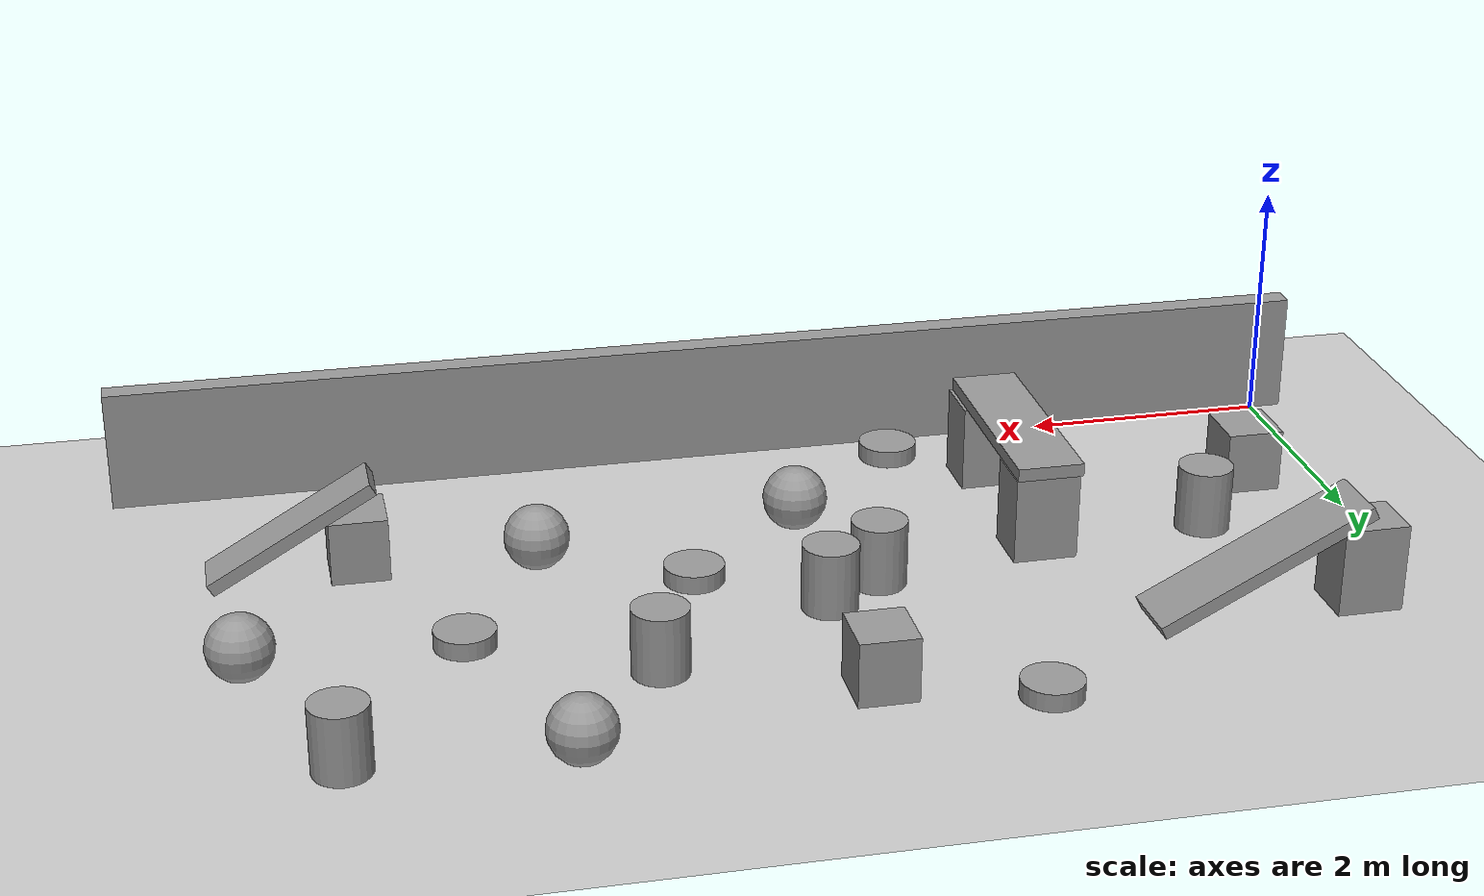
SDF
<sdf version="1.6">
 <world name="default">
  <model name="ground_plane">
   <static>1</static>
   <link name="link">
    <collision name="collision">
     <geometry><plane><normal>0 0 1</normal><size>100 100</size></plane></geometry>
     <surface><friction><ode><mu>100</mu><mu2>50</mu2></ode></friction></surface>
    </collision>
    <visual name="visual">
     <cast_shadows>0</cast_shadows>
     <geometry><plane><normal>0 0 1</normal><size>100 100</size></plane></geometry>
     <material>
      <script><uri>file://media/materials/scripts/gazebo.material</uri><name>Gazebo/Grey</name></script>
     </material>
    </visual>
   </link>
  </model>
  <model name="object1">
   <link name="link">
    <inertial>
     <mass>1</mass>
     <inertia>
      <ixx>0.166667</ixx>
      <ixy>0</ixy>
      <ixz>0</ixz>
      <iyy>0.166667</iyy>
      <iyz>0</iyz>
      <izz>0.166667</izz>
     </inertia>
    </inertial>
    <visual name="visual">
     <geometry><box><size>0.462419 0.484025 0.518106</size></box></geometry>
     <material>
      <script><name>Gazebo/Grey</name><uri>file://media/materials/scripts/gazebo.material</uri></script>
      <ambient>0.3 0.3 0.3 1</ambient>
      <diffuse>0.7 0.7 0.7 1</diffuse>
      <specular>0.01 0.01 0.01 1</specular>
      <emissive>0 0 0 1</emissive>
     </material>
    </visual>
    <collision name="collision">
     <geometry><box><size>0.462419 0.484025 0.518106</size></box></geometry>
     <surface>
      <friction>
       <ode><mu>1</mu><mu2>1</mu2><fdir1>0 0 0</fdir1><slip1>0</slip1><slip2>0</slip2></ode>
       <torsional>
        <coefficient>1</coefficient>
        <patch_radius>0</patch_radius>
        <surface_radius>0</surface_radius>
        <use_patch_radius>1</use_patch_radius>
        <ode><slip>0</slip></ode>
       </torsional>
      </friction>
      <bounce><restitution_coefficient>0</restitution_coefficient><threshold>1e+06</threshold></bounce>
      <contact>
       <collide_without_contact>0</collide_without_contact>
       <collide_without_contact_bitmask>1</collide_without_contact_bitmask>
       <collide_bitmask>1</collide_bitmask>
       <ode>
        <soft_cfm>0</soft_cfm>
        <soft_erp>0.2</soft_erp>
        <kp>1e+13</kp>
        <kd>1</kd>
        <max_vel>0.01</max_vel>
        <min_depth>0</min_depth>
       </ode>
       <bullet>
        <split_impulse>1</split_impulse>
        <split_impulse_penetration_threshold>-0.01</split_impulse_penetration_threshold>
        <soft_cfm>0</soft_cfm>
        <soft_erp>0.2</soft_erp>
        <kp>1e+13</kp>
        <kd>1</kd>
       </bullet>
      </contact>
     </surface>
    </collision>
   </link>
   <static>1</static>
   <pose>0.624317 1.3526 0.259053 0 -0 0</pose>
  </model>
  <model name="object1_clone_0">
   <link name="link">
    <inertial>
     <mass>1</mass>
     <inertia>
      <ixx>0.166667</ixx>
      <ixy>0</ixy>
      <ixz>0</ixz>
      <iyy>0.166667</iyy>
      <iyz>0</iyz>
      <izz>0.166667</izz>
     </inertia>
    </inertial>
    <visual name="visual">
     <geometry><box><size>0.462419 0.484025 0.518106</size></box></geometry>
     <material>
      <script><name>Gazebo/Grey</name><uri>file://media/materials/scripts/gazebo.material</uri></script>
      <ambient>0.3 0.3 0.3 1</ambient>
      <diffuse>0.7 0.7 0.7 1</diffuse>
      <specular>0.01 0.01 0.01 1</specular>
      <emissive>0 0 0 1</emissive>
     </material>
    </visual>
    <collision name="collision">
     <geometry><box><size>0.462419 0.484025 0.518106</size></box></geometry>
     <surface>
      <friction>
       <ode><mu>1</mu><mu2>1</mu2><fdir1>0 0 0</fdir1><slip1>0</slip1><slip2>0</slip2></ode>
       <torsional>
        <coefficient>1</coefficient>
        <patch_radius>0</patch_radius>
        <surface_radius>0</surface_radius>
        <use_patch_radius>1</use_patch_radius>
        <ode><slip>0</slip></ode>
       </torsional>
      </friction>
      <bounce><restitution_coefficient>0</restitution_coefficient><threshold>1e+06</threshold></bounce>
      <contact>
       <collide_without_contact>0</collide_without_contact>
       <collide_without_contact_bitmask>1</collide_without_contact_bitmask>
       <collide_bitmask>1</collide_bitmask>
       <ode>
        <soft_cfm>0</soft_cfm>
        <soft_erp>0.2</soft_erp>
        <kp>1e+13</kp>
        <kd>1</kd>
        <max_vel>0.01</max_vel>
        <min_depth>0</min_depth>
       </ode>
       <bullet>
        <split_impulse>1</split_impulse>
        <split_impulse_penetration_threshold>-0.01</split_impulse_penetration_threshold>
        <soft_cfm>0</soft_cfm>
        <soft_erp>0.2</soft_erp>
        <kp>1e+13</kp>
        <kd>1</kd>
       </bullet>
      </contact>
     </surface>
    </collision>
   </link>
   <static>1</static>
   <pose>4.48758 4.11823 0.259053 0 -0 0</pose>
  </model>
  <model name="object2">
   <link name="link">
    <inertial>
     <mass>1</mass>
     <inertia>
      <ixx>0.166667</ixx>
      <ixy>0</ixy>
      <ixz>0</ixz>
      <iyy>0.166667</iyy>
      <iyz>0</iyz>
      <izz>0.166667</izz>
     </inertia>
    </inertial>
    <visual name="visual">
     <geometry><box><size>0.518422 0.450005 0.707103</size></box></geometry>
     <material>
      <script><name>Gazebo/Grey</name><uri>file://media/materials/scripts/gazebo.material</uri></script>
      <ambient>0.3 0.3 0.3 1</ambient>
      <diffuse>0.7 0.7 0.7 1</diffuse>
      <specular>0.01 0.01 0.01 1</specular>
      <emissive>0 0 0 1</emissive>
     </material>
    </visual>
    <collision name="collision">
     <geometry><box><size>0.518422 0.450005 0.707103</size></box></geometry>
     <surface>
      <friction>
       <ode><mu>1</mu><mu2>1</mu2><fdir1>0 0 0</fdir1><slip1>0</slip1><slip2>0</slip2></ode>
       <torsional>
        <coefficient>1</coefficient>
        <patch_radius>0</patch_radius>
        <surface_radius>0</surface_radius>
        <use_patch_radius>1</use_patch_radius>
        <ode><slip>0</slip></ode>
       </torsional>
      </friction>
      <bounce><restitution_coefficient>0</restitution_coefficient><threshold>1e+06</threshold></bounce>
      <contact>
       <collide_without_contact>0</collide_without_contact>
       <collide_without_contact_bitmask>1</collide_without_contact_bitmask>
       <collide_bitmask>1</collide_bitmask>
       <ode>
        <soft_cfm>0</soft_cfm>
        <soft_erp>0.2</soft_erp>
        <kp>1e+13</kp>
        <kd>1</kd>
        <max_vel>0.01</max_vel>
        <min_depth>0</min_depth>
       </ode>
       <bullet>
        <split_impulse>1</split_impulse>
        <split_impulse_penetration_threshold>-0.01</split_impulse_penetration_threshold>
        <soft_cfm>0</soft_cfm>
        <soft_erp>0.2</soft_erp>
        <kp>1e+13</kp>
        <kd>1</kd>
       </bullet>
      </contact>
     </surface>
    </collision>
   </link>
   <static>1</static>
   <pose>0.547148 3.55385 0.353552 0 -0 0.0094</pose>
  </model>
  <model name="object3">
   <link name="link">
    <inertial>
     <mass>1</mass>
     <inertia>
      <ixx>0.166667</ixx>
      <ixy>0</ixy>
      <ixz>0</ixz>
      <iyy>0.166667</iyy>
      <iyz>0</iyz>
      <izz>0.166667</izz>
     </inertia>
    </inertial>
    <visual name="visual">
     <geometry><box><size>1.83274 0.534759 0.105167</size></box></geometry>
     <material>
      <script><name>Gazebo/Grey</name><uri>file://media/materials/scripts/gazebo.material</uri></script>
      <ambient>0.3 0.3 0.3 1</ambient>
      <diffuse>0.7 0.7 0.7 1</diffuse>
      <specular>0.01 0.01 0.01 1</specular>
      <emissive>0 0 0 1</emissive>
     </material>
    </visual>
    <collision name="collision">
     <geometry><box><size>1.83274 0.534759 0.105167</size></box></geometry>
     <surface>
      <friction>
       <ode><mu>1</mu><mu2>1</mu2><fdir1>0 0 0</fdir1><slip1>0</slip1><slip2>0</slip2></ode>
       <torsional>
        <coefficient>1</coefficient>
        <patch_radius>0</patch_radius>
        <surface_radius>0</surface_radius>
        <use_patch_radius>1</use_patch_radius>
        <ode><slip>0</slip></ode>
       </torsional>
      </friction>
      <bounce><restitution_coefficient>0</restitution_coefficient><threshold>1e+06</threshold></bounce>
      <contact>
       <collide_without_contact>0</collide_without_contact>
       <collide_without_contact_bitmask>1</collide_without_contact_bitmask>
       <collide_bitmask>1</collide_bitmask>
       <ode>
        <soft_cfm>0</soft_cfm>
        <soft_erp>0.2</soft_erp>
        <kp>1e+13</kp>
        <kd>1</kd>
        <max_vel>0.01</max_vel>
        <min_depth>0</min_depth>
       </ode>
       <bullet>
        <split_impulse>1</split_impulse>
        <split_impulse_penetration_threshold>-0.01</split_impulse_penetration_threshold>
        <soft_cfm>0</soft_cfm>
        <soft_erp>0.2</soft_erp>
        <kp>1e+13</kp>
        <kd>1</kd>
       </bullet>
      </contact>
     </surface>
    </collision>
   </link>
   <static>1</static>
   <pose>1.42303 3.57507 0.458088 0.008272 0.462769 0.028019</pose>
  </model>
  <model name="object2_clone">
   <link name="link">
    <inertial>
     <mass>1</mass>
     <inertia>
      <ixx>0.166667</ixx>
      <ixy>0</ixy>
      <ixz>0</ixz>
      <iyy>0.166667</iyy>
      <iyz>0</iyz>
      <izz>0.166667</izz>
     </inertia>
    </inertial>
    <visual name="visual">
     <geometry><box><size>0.518422 0.450005 0.707103</size></box></geometry>
     <material>
      <script><name>Gazebo/Grey</name><uri>file://media/materials/scripts/gazebo.material</uri></script>
      <ambient>0.3 0.3 0.3 1</ambient>
      <diffuse>0.7 0.7 0.7 1</diffuse>
      <specular>0.01 0.01 0.01 1</specular>
      <emissive>0 0 0 1</emissive>
     </material>
    </visual>
    <collision name="collision">
     <geometry><box><size>0.518422 0.450005 0.707103</size></box></geometry>
     <surface>
      <friction>
       <ode><mu>1</mu><mu2>1</mu2><fdir1>0 0 0</fdir1><slip1>0</slip1><slip2>0</slip2></ode>
       <torsional>
        <coefficient>1</coefficient>
        <patch_radius>0</patch_radius>
        <surface_radius>0</surface_radius>
        <use_patch_radius>1</use_patch_radius>
        <ode><slip>0</slip></ode>
       </torsional>
      </friction>
      <bounce><restitution_coefficient>0</restitution_coefficient><threshold>1e+06</threshold></bounce>
      <contact>
       <collide_without_contact>0</collide_without_contact>
       <collide_without_contact_bitmask>1</collide_without_contact_bitmask>
       <collide_bitmask>1</collide_bitmask>
       <ode>
        <soft_cfm>0</soft_cfm>
        <soft_erp>0.2</soft_erp>
        <kp>1e+13</kp>
        <kd>1</kd>
        <max_vel>0.01</max_vel>
        <min_depth>0</min_depth>
       </ode>
       <bullet>
        <split_impulse>1</split_impulse>
        <split_impulse_penetration_threshold>-0.01</split_impulse_penetration_threshold>
        <soft_cfm>0</soft_cfm>
        <soft_erp>0.2</soft_erp>
        <kp>1e+13</kp>
        <kd>1</kd>
       </bullet>
      </contact>
     </surface>
    </collision>
   </link>
   <static>1</static>
   <pose>2.69917 2.20262 0.353552 0 -0 0.0094</pose>
  </model>
  <model name="object2_clone_0">
   <link name="link">
    <inertial>
     <mass>1</mass>
     <inertia>
      <ixx>0.166667</ixx>
      <ixy>0</ixy>
      <ixz>0</ixz>
      <iyy>0.166667</iyy>
      <iyz>0</iyz>
      <izz>0.166667</izz>
     </inertia>
    </inertial>
    <visual name="visual">
     <geometry><box><size>0.518422 0.450005 0.707103</size></box></geometry>
     <material>
      <script><name>Gazebo/Grey</name><uri>file://media/materials/scripts/gazebo.material</uri></script>
      <ambient>0.3 0.3 0.3 1</ambient>
      <diffuse>0.7 0.7 0.7 1</diffuse>
      <specular>0.01 0.01 0.01 1</specular>
      <emissive>0 0 0 1</emissive>
     </material>
    </visual>
    <collision name="collision">
     <geometry><box><size>0.518422 0.450005 0.707103</size></box></geometry>
     <surface>
      <friction>
       <ode><mu>1</mu><mu2>1</mu2><fdir1>0 0 0</fdir1><slip1>0</slip1><slip2>0</slip2></ode>
       <torsional>
        <coefficient>1</coefficient>
        <patch_radius>0</patch_radius>
        <surface_radius>0</surface_radius>
        <use_patch_radius>1</use_patch_radius>
        <ode><slip>0</slip></ode>
       </torsional>
      </friction>
      <bounce><restitution_coefficient>0</restitution_coefficient><threshold>1e+06</threshold></bounce>
      <contact>
       <collide_without_contact>0</collide_without_contact>
       <collide_without_contact_bitmask>1</collide_without_contact_bitmask>
       <collide_bitmask>1</collide_bitmask>
       <ode>
        <soft_cfm>0</soft_cfm>
        <soft_erp>0.2</soft_erp>
        <kp>1e+13</kp>
        <kd>1</kd>
        <max_vel>0.01</max_vel>
        <min_depth>0</min_depth>
       </ode>
       <bullet>
        <split_impulse>1</split_impulse>
        <split_impulse_penetration_threshold>-0.01</split_impulse_penetration_threshold>
        <soft_cfm>0</soft_cfm>
        <soft_erp>0.2</soft_erp>
        <kp>1e+13</kp>
        <kd>1</kd>
       </bullet>
      </contact>
     </surface>
    </collision>
   </link>
   <static>1</static>
   <pose>2.7204 0.828022 0.353552 0 -0 0.0094</pose>
  </model>
  <model name="object3_clone">
   <link name="link">
    <inertial>
     <mass>1</mass>
     <inertia>
      <ixx>0.166667</ixx>
      <ixy>0</ixy>
      <ixz>0</ixz>
      <iyy>0.166667</iyy>
      <iyz>0</iyz>
      <izz>0.166667</izz>
     </inertia>
    </inertial>
    <visual name="visual">
     <geometry><box><size>1.83274 0.534759 0.105167</size></box></geometry>
     <material>
      <script><name>Gazebo/Grey</name><uri>file://media/materials/scripts/gazebo.material</uri></script>
      <ambient>0.3 0.3 0.3 1</ambient>
      <diffuse>0.7 0.7 0.7 1</diffuse>
      <specular>0.01 0.01 0.01 1</specular>
      <emissive>0 0 0 1</emissive>
     </material>
    </visual>
    <collision name="collision">
     <geometry><box><size>1.83274 0.534759 0.105167</size></box></geometry>
     <surface>
      <friction>
       <ode><mu>1</mu><mu2>1</mu2><fdir1>0 0 0</fdir1><slip1>0</slip1><slip2>0</slip2></ode>
       <torsional>
        <coefficient>1</coefficient>
        <patch_radius>0</patch_radius>
        <surface_radius>0</surface_radius>
        <use_patch_radius>1</use_patch_radius>
        <ode><slip>0</slip></ode>
       </torsional>
      </friction>
      <bounce><restitution_coefficient>0</restitution_coefficient><threshold>1e+06</threshold></bounce>
      <contact>
       <collide_without_contact>0</collide_without_contact>
       <collide_without_contact_bitmask>1</collide_without_contact_bitmask>
       <collide_bitmask>1</collide_bitmask>
       <ode>
        <soft_cfm>0</soft_cfm>
        <soft_erp>0.2</soft_erp>
        <kp>1e+13</kp>
        <kd>1</kd>
        <max_vel>0.01</max_vel>
        <min_depth>0</min_depth>
       </ode>
       <bullet>
        <split_impulse>1</split_impulse>
        <split_impulse_penetration_threshold>-0.01</split_impulse_penetration_threshold>
        <soft_cfm>0</soft_cfm>
        <soft_erp>0.2</soft_erp>
        <kp>1e+13</kp>
        <kd>1</kd>
       </bullet>
      </contact>
     </surface>
    </collision>
   </link>
   <static>1</static>
   <pose>2.6845 1.51565 0.75991 0 0 -1.57</pose>
  </model>
  <model name="object4">
   <link name="link">
    <inertial>
     <mass>1</mass>
     <inertia><ixx>0.1</ixx><ixy>0</ixy><ixz>0</ixz><iyy>0.1</iyy><iyz>0</iyz><izz>0.1</izz></inertia>
    </inertial>
    <visual name="visual">
     <geometry><sphere><radius>0.260368</radius></sphere></geometry>
     <material>
      <script><name>Gazebo/Grey</name><uri>file://media/materials/scripts/gazebo.material</uri></script>
      <ambient>0.3 0.3 0.3 1</ambient>
      <diffuse>0.7 0.7 0.7 1</diffuse>
      <specular>0.01 0.01 0.01 1</specular>
      <emissive>0 0 0 1</emissive>
     </material>
    </visual>
    <collision name="collision">
     <geometry><sphere><radius>0.260368</radius></sphere></geometry>
     <surface>
      <friction>
       <ode><mu>1</mu><mu2>1</mu2><fdir1>0 0 0</fdir1><slip1>0</slip1><slip2>0</slip2></ode>
       <torsional>
        <coefficient>1</coefficient>
        <patch_radius>0</patch_radius>
        <surface_radius>0</surface_radius>
        <use_patch_radius>1</use_patch_radius>
        <ode><slip>0</slip></ode>
       </torsional>
      </friction>
      <bounce><restitution_coefficient>0</restitution_coefficient><threshold>1e+06</threshold></bounce>
      <contact>
       <collide_without_contact>0</collide_without_contact>
       <collide_without_contact_bitmask>1</collide_without_contact_bitmask>
       <collide_bitmask>1</collide_bitmask>
       <ode>
        <soft_cfm>0</soft_cfm>
        <soft_erp>0.2</soft_erp>
        <kp>1e+13</kp>
        <kd>1</kd>
        <max_vel>0.01</max_vel>
        <min_depth>0</min_depth>
       </ode>
       <bullet>
        <split_impulse>1</split_impulse>
        <split_impulse_penetration_threshold>-0.01</split_impulse_penetration_threshold>
        <soft_cfm>0</soft_cfm>
        <soft_erp>0.2</soft_erp>
        <kp>1e+13</kp>
        <kd>1</kd>
       </bullet>
      </contact>
     </surface>
    </collision>
   </link>
   <static>1</static>
   <pose>4.4994 1.41888 0.247825 0 -0 0</pose>
  </model>
  <model name="object5">
   <link name="link">
    <inertial>
     <mass>1</mass>
     <inertia><ixx>0.145833</ixx><ixy>0</ixy><ixz>0</ixz><iyy>0.145833</iyy><iyz>0</iyz><izz>0.125</izz></inertia>
    </inertial>
    <visual name="visual">
     <geometry><cylinder><radius>0.221555</radius><length>0.542695</length></cylinder></geometry>
     <material>
      <script><name>Gazebo/Grey</name><uri>file://media/materials/scripts/gazebo.material</uri></script>
      <ambient>0.3 0.3 0.3 1</ambient>
      <diffuse>0.7 0.7 0.7 1</diffuse>
      <specular>0.01 0.01 0.01 1</specular>
      <emissive>0 0 0 1</emissive>
     </material>
    </visual>
    <collision name="collision">
     <geometry><cylinder><radius>0.221555</radius><length>0.542695</length></cylinder></geometry>
     <surface>
      <friction>
       <ode><mu>1</mu><mu2>1</mu2><fdir1>0 0 0</fdir1><slip1>0</slip1><slip2>0</slip2></ode>
       <torsional>
        <coefficient>1</coefficient>
        <patch_radius>0</patch_radius>
        <surface_radius>0</surface_radius>
        <use_patch_radius>1</use_patch_radius>
        <ode><slip>0</slip></ode>
       </torsional>
      </friction>
      <bounce><restitution_coefficient>0</restitution_coefficient><threshold>1e+06</threshold></bounce>
      <contact>
       <collide_without_contact>0</collide_without_contact>
       <collide_without_contact_bitmask>1</collide_without_contact_bitmask>
       <collide_bitmask>1</collide_bitmask>
       <ode>
        <soft_cfm>0</soft_cfm>
        <soft_erp>0.2</soft_erp>
        <kp>1e+13</kp>
        <kd>1</kd>
        <max_vel>0.01</max_vel>
        <min_depth>0</min_depth>
       </ode>
       <bullet>
        <split_impulse>1</split_impulse>
        <split_impulse_penetration_threshold>-0.01</split_impulse_penetration_threshold>
        <soft_cfm>0</soft_cfm>
        <soft_erp>0.2</soft_erp>
        <kp>1e+13</kp>
        <kd>1</kd>
       </bullet>
      </contact>
     </surface>
    </collision>
   </link>
   <static>1</static>
   <pose>1.26811 2.11132 0.271347 0 -0 0</pose>
  </model>
  <model name="object5_clone">
   <link name="link">
    <inertial>
     <mass>1</mass>
     <inertia><ixx>0.145833</ixx><ixy>0</ixy><ixz>0</ixz><iyy>0.145833</iyy><iyz>0</iyz><izz>0.125</izz></inertia>
    </inertial>
    <visual name="visual">
     <geometry><cylinder><radius>0.221555</radius><length>0.542695</length></cylinder></geometry>
     <material>
      <script><name>Gazebo/Grey</name><uri>file://media/materials/scripts/gazebo.material</uri></script>
      <ambient>0.3 0.3 0.3 1</ambient>
      <diffuse>0.7 0.7 0.7 1</diffuse>
      <specular>0.01 0.01 0.01 1</specular>
      <emissive>0 0 0 1</emissive>
     </material>
    </visual>
    <collision name="collision">
     <geometry><cylinder><radius>0.221555</radius><length>0.542695</length></cylinder></geometry>
     <surface>
      <friction>
       <ode><mu>1</mu><mu2>1</mu2><fdir1>0 0 0</fdir1><slip1>0</slip1><slip2>0</slip2></ode>
       <torsional>
        <coefficient>1</coefficient>
        <patch_radius>0</patch_radius>
        <surface_radius>0</surface_radius>
        <use_patch_radius>1</use_patch_radius>
        <ode><slip>0</slip></ode>
       </torsional>
      </friction>
      <bounce><restitution_coefficient>0</restitution_coefficient><threshold>1e+06</threshold></bounce>
      <contact>
       <collide_without_contact>0</collide_without_contact>
       <collide_without_contact_bitmask>1</collide_without_contact_bitmask>
       <collide_bitmask>1</collide_bitmask>
       <ode>
        <soft_cfm>0</soft_cfm>
        <soft_erp>0.2</soft_erp>
        <kp>1e+13</kp>
        <kd>1</kd>
        <max_vel>0.01</max_vel>
        <min_depth>0</min_depth>
       </ode>
       <bullet>
        <split_impulse>1</split_impulse>
        <split_impulse_penetration_threshold>-0.01</split_impulse_penetration_threshold>
        <soft_cfm>0</soft_cfm>
        <soft_erp>0.2</soft_erp>
        <kp>1e+13</kp>
        <kd>1</kd>
       </bullet>
      </contact>
     </surface>
    </collision>
   </link>
   <static>1</static>
   <pose>4.08789 2.52624 0.271347 0 -0 0</pose>
  </model>
  <model name="object5_clone_0">
   <link name="link">
    <inertial>
     <mass>1</mass>
     <inertia><ixx>0.145833</ixx><ixy>0</ixy><ixz>0</ixz><iyy>0.145833</iyy><iyz>0</iyz><izz>0.125</izz></inertia>
    </inertial>
    <visual name="visual">
     <geometry><cylinder><radius>0.221555</radius><length>0.542695</length></cylinder></geometry>
     <material>
      <script><name>Gazebo/Grey</name><uri>file://media/materials/scripts/gazebo.material</uri></script>
      <ambient>0.3 0.3 0.3 1</ambient>
      <diffuse>0.7 0.7 0.7 1</diffuse>
      <specular>0.01 0.01 0.01 1</specular>
      <emissive>0 0 0 1</emissive>
     </material>
    </visual>
    <collision name="collision">
     <geometry><cylinder><radius>0.221555</radius><length>0.542695</length></cylinder></geometry>
     <surface>
      <friction>
       <ode><mu>1</mu><mu2>1</mu2><fdir1>0 0 0</fdir1><slip1>0</slip1><slip2>0</slip2></ode>
       <torsional>
        <coefficient>1</coefficient>
        <patch_radius>0</patch_radius>
        <surface_radius>0</surface_radius>
        <use_patch_radius>1</use_patch_radius>
        <ode><slip>0</slip></ode>
       </torsional>
      </friction>
      <bounce><restitution_coefficient>0</restitution_coefficient><threshold>1e+06</threshold></bounce>
      <contact>
       <collide_without_contact>0</collide_without_contact>
       <collide_without_contact_bitmask>1</collide_without_contact_bitmask>
       <collide_bitmask>1</collide_bitmask>
       <ode>
        <soft_cfm>0</soft_cfm>
        <soft_erp>0.2</soft_erp>
        <kp>1e+13</kp>
        <kd>1</kd>
        <max_vel>0.01</max_vel>
        <min_depth>0</min_depth>
       </ode>
       <bullet>
        <split_impulse>1</split_impulse>
        <split_impulse_penetration_threshold>-0.01</split_impulse_penetration_threshold>
        <soft_cfm>0</soft_cfm>
        <soft_erp>0.2</soft_erp>
        <kp>1e+13</kp>
        <kd>1</kd>
       </bullet>
      </contact>
     </surface>
    </collision>
   </link>
   <static>1</static>
   <pose>4.55176 2.83976 0.271347 0 -0 0</pose>
  </model>
  <model name="object6">
   <link name="link">
    <inertial>
     <mass>1</mass>
     <inertia><ixx>0.145833</ixx><ixy>0</ixy><ixz>0</ixz><iyy>0.145833</iyy><iyz>0</iyz><izz>0.125</izz></inertia>
    </inertial>
    <visual name="visual">
     <geometry><cylinder><radius>0.240804</radius><length>0.144464</length></cylinder></geometry>
     <material>
      <script><name>Gazebo/Grey</name><uri>file://media/materials/scripts/gazebo.material</uri></script>
      <ambient>0.3 0.3 0.3 1</ambient>
      <diffuse>0.7 0.7 0.7 1</diffuse>
      <specular>0.01 0.01 0.01 1</specular>
      <emissive>0 0 0 1</emissive>
     </material>
    </visual>
    <collision name="collision">
     <geometry><cylinder><radius>0.240804</radius><length>0.144464</length></cylinder></geometry>
     <surface>
      <friction>
       <ode><mu>1</mu><mu2>1</mu2><fdir1>0 0 0</fdir1><slip1>0</slip1><slip2>0</slip2></ode>
       <torsional>
        <coefficient>1</coefficient>
        <patch_radius>0</patch_radius>
        <surface_radius>0</surface_radius>
        <use_patch_radius>1</use_patch_radius>
        <ode><slip>0</slip></ode>
       </torsional>
      </friction>
      <bounce><restitution_coefficient>0</restitution_coefficient><threshold>1e+06</threshold></bounce>
      <contact>
       <collide_without_contact>0</collide_without_contact>
       <collide_without_contact_bitmask>1</collide_without_contact_bitmask>
       <collide_bitmask>1</collide_bitmask>
       <ode>
        <soft_cfm>0</soft_cfm>
        <soft_erp>0.2</soft_erp>
        <kp>1e+13</kp>
        <kd>1</kd>
        <max_vel>0.01</max_vel>
        <min_depth>0</min_depth>
       </ode>
       <bullet>
        <split_impulse>1</split_impulse>
        <split_impulse_penetration_threshold>-0.01</split_impulse_penetration_threshold>
        <soft_cfm>0</soft_cfm>
        <soft_erp>0.2</soft_erp>
        <kp>1e+13</kp>
        <kd>1</kd>
       </bullet>
      </contact>
     </surface>
    </collision>
   </link>
   <static>1</static>
   <pose>3.30642 4.4703 0.072232 0 -0 0</pose>
  </model>
  <model name="object6_clone">
   <link name="link">
    <inertial>
     <mass>1</mass>
     <inertia><ixx>0.145833</ixx><ixy>0</ixy><ixz>0</ixz><iyy>0.145833</iyy><iyz>0</iyz><izz>0.125</izz></inertia>
    </inertial>
    <visual name="visual">
     <geometry><cylinder><radius>0.240804</radius><length>0.144464</length></cylinder></geometry>
     <material>
      <script><name>Gazebo/Grey</name><uri>file://media/materials/scripts/gazebo.material</uri></script>
      <ambient>0.3 0.3 0.3 1</ambient>
      <diffuse>0.7 0.7 0.7 1</diffuse>
      <specular>0.01 0.01 0.01 1</specular>
      <emissive>0 0 0 1</emissive>
     </material>
    </visual>
    <collision name="collision">
     <geometry><cylinder><radius>0.240804</radius><length>0.144464</length></cylinder></geometry>
     <surface>
      <friction>
       <ode><mu>1</mu><mu2>1</mu2><fdir1>0 0 0</fdir1><slip1>0</slip1><slip2>0</slip2></ode>
       <torsional>
        <coefficient>1</coefficient>
        <patch_radius>0</patch_radius>
        <surface_radius>0</surface_radius>
        <use_patch_radius>1</use_patch_radius>
        <ode><slip>0</slip></ode>
       </torsional>
      </friction>
      <bounce><restitution_coefficient>0</restitution_coefficient><threshold>1e+06</threshold></bounce>
      <contact>
       <collide_without_contact>0</collide_without_contact>
       <collide_without_contact_bitmask>1</collide_without_contact_bitmask>
       <collide_bitmask>1</collide_bitmask>
       <ode>
        <soft_cfm>0</soft_cfm>
        <soft_erp>0.2</soft_erp>
        <kp>1e+13</kp>
        <kd>1</kd>
        <max_vel>0.01</max_vel>
        <min_depth>0</min_depth>
       </ode>
       <bullet>
        <split_impulse>1</split_impulse>
        <split_impulse_penetration_threshold>-0.01</split_impulse_penetration_threshold>
        <soft_cfm>0</soft_cfm>
        <soft_erp>0.2</soft_erp>
        <kp>1e+13</kp>
        <kd>1</kd>
       </bullet>
      </contact>
     </surface>
    </collision>
   </link>
   <static>1</static>
   <pose>3.42647 0.307172 0.072232 0 -0 0</pose>
  </model>
  <model name="wall1_0_clone">
   <link name="link">
    <inertial>
     <mass>1</mass>
     <inertia>
      <ixx>0.166667</ixx>
      <ixy>0</ixy>
      <ixz>0</ixz>
      <iyy>0.166667</iyy>
      <iyz>0</iyz>
      <izz>0.166667</izz>
     </inertia>
    </inertial>
    <visual name="visual">
     <geometry><box><size>10.1915 0.189922 1</size></box></geometry>
     <material>
      <script><name>Gazebo/Grey</name><uri>file://media/materials/scripts/gazebo.material</uri></script>
      <ambient>0.3 0.3 0.3 1</ambient>
      <diffuse>0.7 0.7 0.7 1</diffuse>
      <specular>0.01 0.01 0.01 1</specular>
      <emissive>0 0 0 1</emissive>
     </material>
    </visual>
    <collision name="collision">
     <geometry><box><size>10.1915 0.189922 1</size></box></geometry>
     <surface>
      <friction>
       <ode><mu>1</mu><mu2>1</mu2><fdir1>0 0 0</fdir1><slip1>0</slip1><slip2>0</slip2></ode>
       <torsional>
        <coefficient>1</coefficient>
        <patch_radius>0</patch_radius>
        <surface_radius>0</surface_radius>
        <use_patch_radius>1</use_patch_radius>
        <ode><slip>0</slip></ode>
       </torsional>
      </friction>
      <bounce><restitution_coefficient>0</restitution_coefficient><threshold>1e+06</threshold></bounce>
      <contact>
       <collide_without_contact>0</collide_without_contact>
       <collide_without_contact_bitmask>1</collide_without_contact_bitmask>
       <collide_bitmask>1</collide_bitmask>
       <ode>
        <soft_cfm>0</soft_cfm>
        <soft_erp>0.2</soft_erp>
        <kp>1e+13</kp>
        <kd>1</kd>
        <max_vel>0.01</max_vel>
        <min_depth>0</min_depth>
       </ode>
       <bullet>
        <split_impulse>1</split_impulse>
        <split_impulse_penetration_threshold>-0.01</split_impulse_penetration_threshold>
        <soft_cfm>0</soft_cfm>
        <soft_erp>0.2</soft_erp>
        <kp>1e+13</kp>
        <kd>1</kd>
       </bullet>
      </contact>
     </surface>
    </collision>
   </link>
   <static>1</static>
   <pose>4.82102 -0.119292 0.5 0 -0 0</pose>
  </model>
  <model name="object4_clone_1">
   <link name="link">
    <inertial>
     <mass>1</mass>
     <inertia><ixx>0.1</ixx><ixy>0</ixy><ixz>0</ixz><iyy>0.1</iyy><iyz>0</iyz><izz>0.1</izz></inertia>
    </inertial>
    <visual name="visual">
     <geometry><sphere><radius>0.260368</radius></sphere></geometry>
     <material>
      <script><name>Gazebo/Grey</name><uri>file://media/materials/scripts/gazebo.material</uri></script>
      <ambient>0.3 0.3 0.3 1</ambient>
      <diffuse>0.7 0.7 0.7 1</diffuse>
      <specular>0.01 0.01 0.01 1</specular>
      <emissive>0 0 0 1</emissive>
     </material>
    </visual>
    <collision name="collision">
     <geometry><sphere><radius>0.260368</radius></sphere></geometry>
     <surface>
      <friction>
       <ode><mu>1</mu><mu2>1</mu2><fdir1>0 0 0</fdir1><slip1>0</slip1><slip2>0</slip2></ode>
       <torsional>
        <coefficient>1</coefficient>
        <patch_radius>0</patch_radius>
        <surface_radius>0</surface_radius>
        <use_patch_radius>1</use_patch_radius>
        <ode><slip>0</slip></ode>
       </torsional>
      </friction>
      <bounce><restitution_coefficient>0</restitution_coefficient><threshold>1e+06</threshold></bounce>
      <contact>
       <collide_without_contact>0</collide_without_contact>
       <collide_without_contact_bitmask>1</collide_without_contact_bitmask>
       <collide_bitmask>1</collide_bitmask>
       <ode>
        <soft_cfm>0</soft_cfm>
        <soft_erp>0.2</soft_erp>
        <kp>1e+13</kp>
        <kd>1</kd>
        <max_vel>0.01</max_vel>
        <min_depth>0</min_depth>
       </ode>
       <bullet>
        <split_impulse>1</split_impulse>
        <split_impulse_penetration_threshold>-0.01</split_impulse_penetration_threshold>
        <soft_cfm>0</soft_cfm>
        <soft_erp>0.2</soft_erp>
        <kp>1e+13</kp>
        <kd>1</kd>
       </bullet>
      </contact>
     </surface>
    </collision>
   </link>
   <static>1</static>
   <pose>6.64159 1.68671 0.247825 0 -0 0</pose>
  </model>
  <model name="object4_clone_2">
   <link name="link">
    <inertial>
     <mass>1</mass>
     <inertia><ixx>0.1</ixx><ixy>0</ixy><ixz>0</ixz><iyy>0.1</iyy><iyz>0</iyz><izz>0.1</izz></inertia>
    </inertial>
    <visual name="visual">
     <geometry><sphere><radius>0.260368</radius></sphere></geometry>
     <material>
      <script><name>Gazebo/Grey</name><uri>file://media/materials/scripts/gazebo.material</uri></script>
      <ambient>0.3 0.3 0.3 1</ambient>
      <diffuse>0.7 0.7 0.7 1</diffuse>
      <specular>0.01 0.01 0.01 1</specular>
      <emissive>0 0 0 1</emissive>
     </material>
    </visual>
    <collision name="collision">
     <geometry><sphere><radius>0.260368</radius></sphere></geometry>
     <surface>
      <friction>
       <ode><mu>1</mu><mu2>1</mu2><fdir1>0 0 0</fdir1><slip1>0</slip1><slip2>0</slip2></ode>
       <torsional>
        <coefficient>1</coefficient>
        <patch_radius>0</patch_radius>
        <surface_radius>0</surface_radius>
        <use_patch_radius>1</use_patch_radius>
        <ode><slip>0</slip></ode>
       </torsional>
      </friction>
      <bounce><restitution_coefficient>0</restitution_coefficient><threshold>1e+06</threshold></bounce>
      <contact>
       <collide_without_contact>0</collide_without_contact>
       <collide_without_contact_bitmask>1</collide_without_contact_bitmask>
       <collide_bitmask>1</collide_bitmask>
       <ode>
        <soft_cfm>0</soft_cfm>
        <soft_erp>0.2</soft_erp>
        <kp>1e+13</kp>
        <kd>1</kd>
        <max_vel>0.01</max_vel>
        <min_depth>0</min_depth>
       </ode>
       <bullet>
        <split_impulse>1</split_impulse>
        <split_impulse_penetration_threshold>-0.01</split_impulse_penetration_threshold>
        <soft_cfm>0</soft_cfm>
        <soft_erp>0.2</soft_erp>
        <kp>1e+13</kp>
        <kd>1</kd>
       </bullet>
      </contact>
     </surface>
    </collision>
   </link>
   <static>1</static>
   <pose>6.74469 4.64065 0.247825 0 -0 0</pose>
  </model>
  <model name="object4_clone_7">
   <link name="link">
    <inertial>
     <mass>1</mass>
     <inertia><ixx>0.1</ixx><ixy>0</ixy><ixz>0</ixz><iyy>0.1</iyy><iyz>0</iyz><izz>0.1</izz></inertia>
    </inertial>
    <visual name="visual">
     <geometry><sphere><radius>0.260368</radius></sphere></geometry>
     <material>
      <script><name>Gazebo/Grey</name><uri>file://media/materials/scripts/gazebo.material</uri></script>
      <ambient>0.3 0.3 0.3 1</ambient>
      <diffuse>0.7 0.7 0.7 1</diffuse>
      <specular>0.01 0.01 0.01 1</specular>
      <emissive>0 0 0 1</emissive>
     </material>
    </visual>
    <collision name="collision">
     <geometry><sphere><radius>0.260368</radius></sphere></geometry>
     <surface>
      <friction>
       <ode><mu>1</mu><mu2>1</mu2><fdir1>0 0 0</fdir1><slip1>0</slip1><slip2>0</slip2></ode>
       <torsional>
        <coefficient>1</coefficient>
        <patch_radius>0</patch_radius>
        <surface_radius>0</surface_radius>
        <use_patch_radius>1</use_patch_radius>
        <ode><slip>0</slip></ode>
       </torsional>
      </friction>
      <bounce><restitution_coefficient>0</restitution_coefficient><threshold>1e+06</threshold></bounce>
      <contact>
       <collide_without_contact>0</collide_without_contact>
       <collide_without_contact_bitmask>1</collide_without_contact_bitmask>
       <collide_bitmask>1</collide_bitmask>
       <ode>
        <soft_cfm>0</soft_cfm>
        <soft_erp>0.2</soft_erp>
        <kp>1e+13</kp>
        <kd>1</kd>
        <max_vel>0.01</max_vel>
        <min_depth>0</min_depth>
       </ode>
       <bullet>
        <split_impulse>1</split_impulse>
        <split_impulse_penetration_threshold>-0.01</split_impulse_penetration_threshold>
        <soft_cfm>0</soft_cfm>
        <soft_erp>0.2</soft_erp>
        <kp>1e+13</kp>
        <kd>1</kd>
       </bullet>
      </contact>
     </surface>
    </collision>
   </link>
   <static>1</static>
   <pose>9 3 0.247825 0 -0 0</pose>
  </model>
  <model name="object1_clone_0_clone">
   <link name="link">
    <inertial>
     <mass>1</mass>
     <inertia>
      <ixx>0.166667</ixx>
      <ixy>0</ixy>
      <ixz>0</ixz>
      <iyy>0.166667</iyy>
      <iyz>0</iyz>
      <izz>0.166667</izz>
     </inertia>
    </inertial>
    <visual name="visual">
     <geometry><box><size>0.462419 0.484025 0.518106</size></box></geometry>
     <material>
      <script><name>Gazebo/Grey</name><uri>file://media/materials/scripts/gazebo.material</uri></script>
      <ambient>0.3 0.3 0.3 1</ambient>
      <diffuse>0.7 0.7 0.7 1</diffuse>
      <specular>0.01 0.01 0.01 1</specular>
      <emissive>0 0 0 1</emissive>
     </material>
    </visual>
    <collision name="collision">
     <geometry><box><size>0.462419 0.484025 0.518106</size></box></geometry>
     <surface>
      <friction>
       <ode><mu>1</mu><mu2>1</mu2><fdir1>0 0 0</fdir1><slip1>0</slip1><slip2>0</slip2></ode>
       <torsional>
        <coefficient>1</coefficient>
        <patch_radius>0</patch_radius>
        <surface_radius>0</surface_radius>
        <use_patch_radius>1</use_patch_radius>
        <ode><slip>0</slip></ode>
       </torsional>
      </friction>
      <bounce><restitution_coefficient>0</restitution_coefficient><threshold>1e+06</threshold></bounce>
      <contact>
       <collide_without_contact>0</collide_without_contact>
       <collide_without_contact_bitmask>1</collide_without_contact_bitmask>
       <collide_bitmask>1</collide_bitmask>
       <ode>
        <soft_cfm>0</soft_cfm>
        <soft_erp>0.2</soft_erp>
        <kp>1e+13</kp>
        <kd>1</kd>
        <max_vel>0.01</max_vel>
        <min_depth>0</min_depth>
       </ode>
       <bullet>
        <split_impulse>1</split_impulse>
        <split_impulse_penetration_threshold>-0.01</split_impulse_penetration_threshold>
        <soft_cfm>0</soft_cfm>
        <soft_erp>0.2</soft_erp>
        <kp>1e+13</kp>
        <kd>1</kd>
       </bullet>
      </contact>
     </surface>
    </collision>
   </link>
   <static>1</static>
   <pose>8.0246 1.46421 0.259053 0 -0 0</pose>
  </model>
  <model name="object5_clone_2">
   <link name="link">
    <inertial>
     <mass>1</mass>
     <inertia><ixx>0.145833</ixx><ixy>0</ixy><ixz>0</ixz><iyy>0.145833</iyy><iyz>0</iyz><izz>0.125</izz></inertia>
    </inertial>
    <visual name="visual">
     <geometry><cylinder><radius>0.221555</radius><length>0.542695</length></cylinder></geometry>
     <material>
      <script><name>Gazebo/Grey</name><uri>file://media/materials/scripts/gazebo.material</uri></script>
      <ambient>0.3 0.3 0.3 1</ambient>
      <diffuse>0.7 0.7 0.7 1</diffuse>
      <specular>0.01 0.01 0.01 1</specular>
      <emissive>0 0 0 1</emissive>
     </material>
    </visual>
    <collision name="collision">
     <geometry><cylinder><radius>0.221555</radius><length>0.542695</length></cylinder></geometry>
     <surface>
      <friction>
       <ode><mu>1</mu><mu2>1</mu2><fdir1>0 0 0</fdir1><slip1>0</slip1><slip2>0</slip2></ode>
       <torsional>
        <coefficient>1</coefficient>
        <patch_radius>0</patch_radius>
        <surface_radius>0</surface_radius>
        <use_patch_radius>1</use_patch_radius>
        <ode><slip>0</slip></ode>
       </torsional>
      </friction>
      <bounce><restitution_coefficient>0</restitution_coefficient><threshold>1e+06</threshold></bounce>
      <contact>
       <collide_without_contact>0</collide_without_contact>
       <collide_without_contact_bitmask>1</collide_without_contact_bitmask>
       <collide_bitmask>1</collide_bitmask>
       <ode>
        <soft_cfm>0</soft_cfm>
        <soft_erp>0.2</soft_erp>
        <kp>1e+13</kp>
        <kd>1</kd>
        <max_vel>0.01</max_vel>
        <min_depth>0</min_depth>
       </ode>
       <bullet>
        <split_impulse>1</split_impulse>
        <split_impulse_penetration_threshold>-0.01</split_impulse_penetration_threshold>
        <soft_cfm>0</soft_cfm>
        <soft_erp>0.2</soft_erp>
        <kp>1e+13</kp>
        <kd>1</kd>
       </bullet>
      </contact>
     </surface>
    </collision>
   </link>
   <static>1</static>
   <pose>6 3.55861 0.271347 0 -0 0</pose>
  </model>
  <model name="object5_clone_3">
   <link name="link">
    <inertial>
     <mass>1</mass>
     <inertia><ixx>0.145833</ixx><ixy>0</ixy><ixz>0</ixz><iyy>0.145833</iyy><iyz>0</iyz><izz>0.125</izz></inertia>
    </inertial>
    <visual name="visual">
     <geometry><cylinder><radius>0.221555</radius><length>0.542695</length></cylinder></geometry>
     <material>
      <script><name>Gazebo/Grey</name><uri>file://media/materials/scripts/gazebo.material</uri></script>
      <ambient>0.3 0.3 0.3 1</ambient>
      <diffuse>0.7 0.7 0.7 1</diffuse>
      <specular>0.01 0.01 0.01 1</specular>
      <emissive>0 0 0 1</emissive>
     </material>
    </visual>
    <collision name="collision">
     <geometry><cylinder><radius>0.221555</radius><length>0.542695</length></cylinder></geometry>
     <surface>
      <friction>
       <ode><mu>1</mu><mu2>1</mu2><fdir1>0 0 0</fdir1><slip1>0</slip1><slip2>0</slip2></ode>
       <torsional>
        <coefficient>1</coefficient>
        <patch_radius>0</patch_radius>
        <surface_radius>0</surface_radius>
        <use_patch_radius>1</use_patch_radius>
        <ode><slip>0</slip></ode>
       </torsional>
      </friction>
      <bounce><restitution_coefficient>0</restitution_coefficient><threshold>1e+06</threshold></bounce>
      <contact>
       <collide_without_contact>0</collide_without_contact>
       <collide_without_contact_bitmask>1</collide_without_contact_bitmask>
       <collide_bitmask>1</collide_bitmask>
       <ode>
        <soft_cfm>0</soft_cfm>
        <soft_erp>0.2</soft_erp>
        <kp>1e+13</kp>
        <kd>1</kd>
        <max_vel>0.01</max_vel>
        <min_depth>0</min_depth>
       </ode>
       <bullet>
        <split_impulse>1</split_impulse>
        <split_impulse_penetration_threshold>-0.01</split_impulse_penetration_threshold>
        <soft_cfm>0</soft_cfm>
        <soft_erp>0.2</soft_erp>
        <kp>1e+13</kp>
        <kd>1</kd>
       </bullet>
      </contact>
     </surface>
    </collision>
   </link>
   <static>1</static>
   <pose>8.38301 4.44357 0.271347 0 -0 0</pose>
  </model>
  <model name="object6_clone_clone">
   <link name="link">
    <inertial>
     <mass>1</mass>
     <inertia><ixx>0.145833</ixx><ixy>0</ixy><ixz>0</ixz><iyy>0.145833</iyy><iyz>0</iyz><izz>0.125</izz></inertia>
    </inertial>
    <visual name="visual">
     <geometry><cylinder><radius>0.240804</radius><length>0.144464</length></cylinder></geometry>
     <material>
      <script><name>Gazebo/Grey</name><uri>file://media/materials/scripts/gazebo.material</uri></script>
      <ambient>0.3 0.3 0.3 1</ambient>
      <diffuse>0.7 0.7 0.7 1</diffuse>
      <specular>0.01 0.01 0.01 1</specular>
      <emissive>0 0 0 1</emissive>
     </material>
    </visual>
    <collision name="collision">
     <geometry><cylinder><radius>0.240804</radius><length>0.144464</length></cylinder></geometry>
     <surface>
      <friction>
       <ode><mu>1</mu><mu2>1</mu2><fdir1>0 0 0</fdir1><slip1>0</slip1><slip2>0</slip2></ode>
       <torsional>
        <coefficient>1</coefficient>
        <patch_radius>0</patch_radius>
        <surface_radius>0</surface_radius>
        <use_patch_radius>1</use_patch_radius>
        <ode><slip>0</slip></ode>
       </torsional>
      </friction>
      <bounce><restitution_coefficient>0</restitution_coefficient><threshold>1e+06</threshold></bounce>
      <contact>
       <collide_without_contact>0</collide_without_contact>
       <collide_without_contact_bitmask>1</collide_without_contact_bitmask>
       <collide_bitmask>1</collide_bitmask>
       <ode>
        <soft_cfm>0</soft_cfm>
        <soft_erp>0.2</soft_erp>
        <kp>1e+13</kp>
        <kd>1</kd>
        <max_vel>0.01</max_vel>
        <min_depth>0</min_depth>
       </ode>
       <bullet>
        <split_impulse>1</split_impulse>
        <split_impulse_penetration_threshold>-0.01</split_impulse_penetration_threshold>
        <soft_cfm>0</soft_cfm>
        <soft_erp>0.2</soft_erp>
        <kp>1e+13</kp>
        <kd>1</kd>
       </bullet>
      </contact>
     </surface>
    </collision>
   </link>
   <static>1</static>
   <pose>5.48167 2.19076 0.072232 0 -0 0</pose>
  </model>
  <model name="object6_clone_clone_0">
   <link name="link">
    <inertial>
     <mass>1</mass>
     <inertia><ixx>0.145833</ixx><ixy>0</ixy><ixz>0</ixz><iyy>0.145833</iyy><iyz>0</iyz><izz>0.125</izz></inertia>
    </inertial>
    <visual name="visual">
     <geometry><cylinder><radius>0.240804</radius><length>0.144464</length></cylinder></geometry>
     <material>
      <script><name>Gazebo/Grey</name><uri>file://media/materials/scripts/gazebo.material</uri></script>
      <ambient>0.3 0.3 0.3 1</ambient>
      <diffuse>0.7 0.7 0.7 1</diffuse>
      <specular>0.01 0.01 0.01 1</specular>
      <emissive>0 0 0 1</emissive>
     </material>
    </visual>
    <collision name="collision">
     <geometry><cylinder><radius>0.240804</radius><length>0.144464</length></cylinder></geometry>
     <surface>
      <friction>
       <ode><mu>1</mu><mu2>1</mu2><fdir1>0 0 0</fdir1><slip1>0</slip1><slip2>0</slip2></ode>
       <torsional>
        <coefficient>1</coefficient>
        <patch_radius>0</patch_radius>
        <surface_radius>0</surface_radius>
        <use_patch_radius>1</use_patch_radius>
        <ode><slip>0</slip></ode>
       </torsional>
      </friction>
      <bounce><restitution_coefficient>0</restitution_coefficient><threshold>1e+06</threshold></bounce>
      <contact>
       <collide_without_contact>0</collide_without_contact>
       <collide_without_contact_bitmask>1</collide_without_contact_bitmask>
       <collide_bitmask>1</collide_bitmask>
       <ode>
        <soft_cfm>0</soft_cfm>
        <soft_erp>0.2</soft_erp>
        <kp>1e+13</kp>
        <kd>1</kd>
        <max_vel>0.01</max_vel>
        <min_depth>0</min_depth>
       </ode>
       <bullet>
        <split_impulse>1</split_impulse>
        <split_impulse_penetration_threshold>-0.01</split_impulse_penetration_threshold>
        <soft_cfm>0</soft_cfm>
        <soft_erp>0.2</soft_erp>
        <kp>1e+13</kp>
        <kd>1</kd>
       </bullet>
      </contact>
     </surface>
    </collision>
   </link>
   <static>1</static>
   <pose>7.35233 2.86758 0.072232 0 -0 0</pose>
  </model>
  <model name="unit_box_clone">
   <pose>8.53689 1.49443 0.416675 -0.00013 0.522311 -0.000261</pose>
   <link name="link">
    <inertial>
     <mass>1</mass>
     <inertia>
      <ixx>0.166667</ixx>
      <ixy>0</ixy>
      <ixz>0</ixz>
      <iyy>0.166667</iyy>
      <iyz>0</iyz>
      <izz>0.166667</izz>
     </inertia>
    </inertial>
    <collision name="collision"><geometry><box><size>1.48855 0.417991 0.10464</size></box></geometry></collision>
    <visual name="visual">
     <geometry><box><size>1.48855 0.417991 0.10464</size></box></geometry>
     <material>
      <script><name>Gazebo/Grey</name><uri>file://media/materials/scripts/gazebo.material</uri></script>
     </material>
    </visual>
   </link>
  </model>
 </world>
</sdf>
